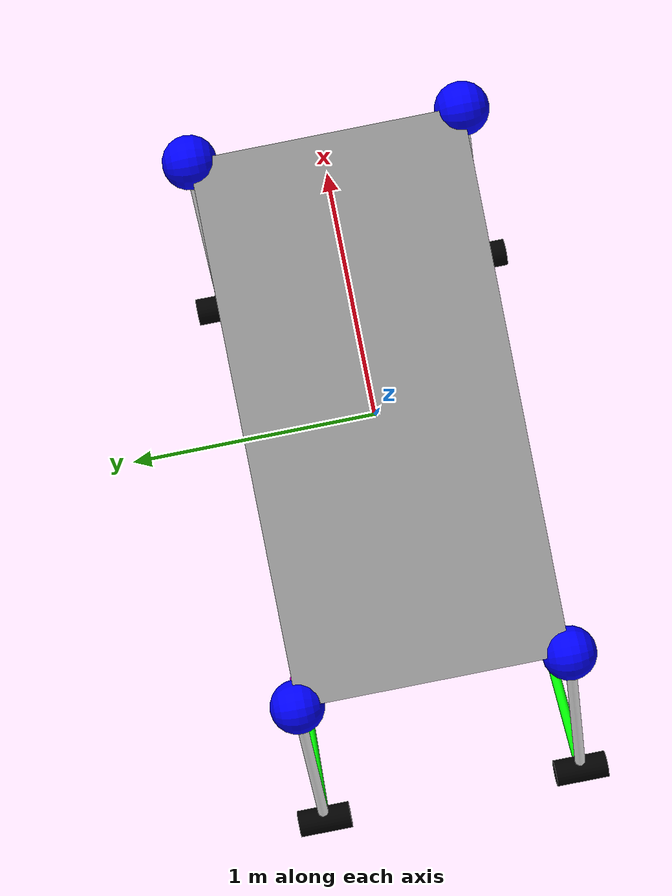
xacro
<?xml version="1.0"?>

<robot name="dogebot">

  <!-- ******************* RVIZ Colors ******************* -->

  <material name="white">    <color rgba="1.00 1.00 1.00 1"/>  </material>
  <material name="gray">     <color rgba="0.60 0.60 0.60 1"/>  </material>
  <material name="table">    <color rgba="0.85 0.77 0.77 1"/>  </material>
  <material name="black">    <color rgba="0.00 0.00 0.00 1"/>  </material>

  <material name="red">      <color rgba="1.00 0.00 0.00 1"/>  </material>
  <material name="green">    <color rgba="0.00 1.00 0.00 1"/>  </material>
  <material name="blue">     <color rgba="0.00 0.00 1.00 1"/>  </material>

  <material name="cyan">     <color rgba="0.00 1.00 1.00 1"/>  </material>
  <material name="magenta">  <color rgba="1.00 0.00 1.00 1"/>  </material>
  <material name="yellow">   <color rgba="1.00 1.00 0.00 1"/>  </material>

  <material name="orange">   <color rgba="1.00 0.65 0.00 1"/>  </material>

  <!-- ******************** Kinematics ******************* -->
  <!-- Note the 'origin' tag in the joints defines the shift and
       reorientation, i.e. the transform.  For moving joints, this
       happens before the continuous joint rotates around 'axis'. -->

<!-- ******************** World and Body ******************* -->
      <link name="world">
      </link>

      <joint name="world_to_body" type="fixed">
        <parent link="world"/>
        <child  link="body"/>
        <origin xyz="0 0 1" rpy="0 0 0"/>
      </joint>

      <link name="body">
        <visual>
            <geometry>
                <box size= "2 1 0.1"/>
            </geometry>
            <origin xyz="0 0 0" rpy="0 0 0"/>
            <material name="gray"/>
        </visual>
      </link>

    <xacro:macro name="leg" params="x y legname">
    <!-- *** Translation: body to hip joint *** -->
      <joint name="body_${legname}" type="fixed">
        <parent link="body"/>
        <child  link="body_leg_${legname}_link"/>
        <origin xyz="${x} ${y} 0" rpy="0 0 0"/>
      </joint>

      <link name="body_leg_${legname}_link">
      </link>

    <!-- *** Rotation about z: hip joint *** -->
      <joint name="hip_${legname}_z" type="continuous">
        <parent link="body_leg_${legname}_link"/>
        <child  link="hip_${legname}_link"/>
        <origin xyz="0 0 0" rpy="-1.5708 0 0"/>
        <axis   xyz="0 0 1"/>
      </joint>

      <link name="hip_${legname}_link">
        <visual>
            <geometry>
                <sphere radius="0.1"/>
            </geometry>
            <material name="blue"/>
        </visual>
      </link>

    <!-- *** Rotation about x: hip joint *** -->
      <joint name="hip_${legname}_x" type="continuous">
        <parent link="hip_${legname}_link"/>
        <child  link="thigh_${legname}"/>
        <origin xyz="0 0 0" rpy="0 0 0.7854"/>
        <axis   xyz="1 0 0"/>
      </joint>

      <link name="thigh_${legname}">
        <visual>
            <geometry>
                <cylinder length="0.7" radius="0.02"/>
            </geometry>
            <origin xyz="0 0.35 0" rpy="1.5708 0 0"/>
            <material name="white"/>
        </visual>
      </link>

    <!-- *** Translation: hip to knee joint *** -->
      <joint name="thighlink_${legname}" type="fixed">
        <parent link="thigh_${legname}"/>
        <child  link="thighlink_${legname}"/>
        <origin xyz="0 0.7 0" rpy="0 0 0"/>
      </joint>

      <link name="thighlink_${legname}">
        <visual>
            <geometry>
                <cylinder length="0.2" radius="0.05"/>
            </geometry>
            <material name="black"/>
        </visual>
      </link>

    <!-- *** Rotation: knee joint *** -->
      <joint name="knee_${legname}" type="continuous">
        <parent link="thighlink_${legname}"/>
        <child  link="calf_${legname}"/>
        <origin xyz="0 0 0" rpy="0 0 0"/>
        <axis   xyz="0 0 1"/>
      </joint>

      <link name="calf_${legname}">
        <visual>
            <geometry>
                <cylinder length="0.7" radius="0.02"/>
            </geometry>
            <origin xyz="0.35 0 0" rpy="0 1.5708 0"/>
            <material name="green"/>
        </visual>
      </link>

    <!-- *** Translation: knee to calf joint *** -->
      <joint name="calflink_${legname}" type="fixed">
        <parent link="calf_${legname}"/>
        <child  link="tip_${legname}"/>
        <origin xyz="0.7 0 0" rpy="0 0 0"/>
      </joint>

      <link name="tip_${legname}">
        <visual>
            <geometry>
                <sphere radius="0.05"/>
            </geometry>
            <material name="magenta"/>
        </visual>
      </link>
    </xacro:macro>

    <!-- ******************** Leg Xacro Chains ******************* -->
    <xacro:leg x="1" y="0.5" legname="1" />
    <xacro:leg x="1" y="-0.5" legname="2" />
    <xacro:leg x="-1" y="0.5" legname="3" />
    <xacro:leg x="-1" y="-0.5" legname="4" />

</robot>
